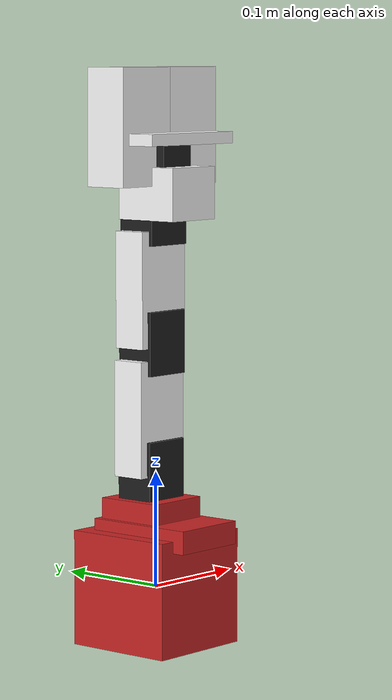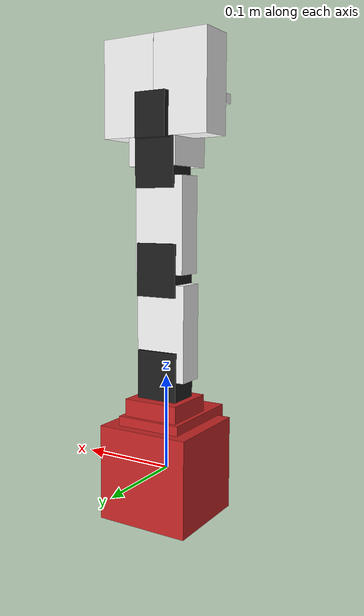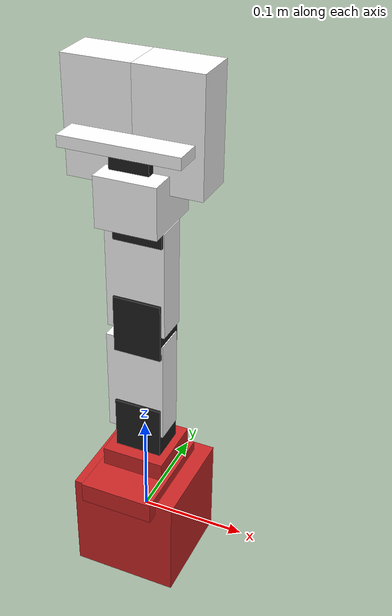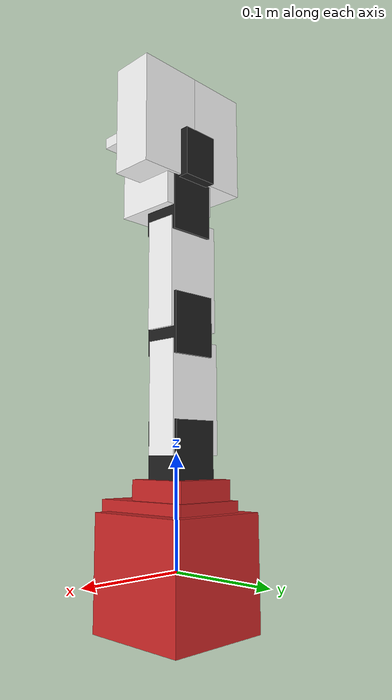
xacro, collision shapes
<?xml version="1.0"?>

<robot name="arm" xmlns:xacro="http://www.ros.org/wiki/xacro"> <!-- Added xmlsn:xacro-->

  <!--Inclusions-->
  <xacro:include filename="$(find arm_description)/urdf/arm.gazebo.xacro" />
  <xacro:include filename="$(find arm_description)/urdf/arm.transmission.xacro" />
  <xacro:include filename="$(find arm_description)/urdf/camera.xacro" />

  <link name="base_link">
    <visual>
      <geometry>
        <mesh filename="package://arm_description/meshes/base_link.stl" scale="0.001 0.001 0.001"/>
      </geometry>
      <origin rpy="0 0 0" xyz="0 0 0"/>
    </visual>
    <collision>
      <geometry>
        <box size="0.1 0.1 0.1"/>
      </geometry>
      <origin rpy="0 0 0" xyz="0 0 0"/>
    </collision>
    <inertial>
      <mass value="0.1"/>
      <inertia ixx="1.06682889e+08" ixy="0.0" ixz="0.0" iyy="9.92165844e+07" iyz="0.0" izz="1.26939175e+08"/>
    </inertial>
  </link>

  <joint name="base_1_2" type="fixed">
    <parent link="base_link"/>
    <child link="base_turn"/>
    <origin xyz="-0.0011 -0.011 0.05"/>
  </joint>

  <link name="base_turn">
    <visual>
      <geometry>
        <mesh filename="package://arm_description/meshes/base_turn.stl" scale="0.001 0.001 0.001"/>
      </geometry>
      <origin rpy="0 0 0" xyz="0 0 0"/>
    </visual>
    <collision>
      <geometry>
          <box size="0.07 0.1 0.02"/>
      </geometry>
      <origin rpy="0 0 0" xyz="0 0 0"/>
    </collision>
    <inertial>
      <mass value="0.1"/>
      <inertia ixx="1.35223008e+07" ixy="0.0" ixz="0.0" iyy="8.13814925e+06" iyz="0.0" izz="2.14903814e+07"/>
    </inertial>
  </link>

  <joint name="j0" type="revolute">
    <parent link="base_turn"/>
    <child link="base_turn_rot"/>
    <origin xyz="-0.0 0.0155 0.013" rpy = "0 0 -1.57"/>
    <axis xyz="0 0 1" />
    <limit effort="300" velocity="0.1" lower="-2.57" upper="2.57"/>
  </joint>

  <link name="base_turn_rot">
    <visual>
      <geometry>
        <mesh filename="package://arm_description/meshes/base_turn_table_rot.stl" scale="0.001 0.001 0.001"/>
      </geometry>

    </visual>
    <collision>
      <geometry>
        <box size="0.06 0.06 0.03"/>
      </geometry>
      <origin rpy="0 0 0" xyz="0 0 0"/>
    </collision>

    <inertial>
      <mass value="0.1"/>
      <inertia ixx="3.41992001e+06" ixy="0.0" ixz="0.0" iyy="2.85587836e+06" iyz="0.0" izz="5.84313870e+06"/>
    </inertial>
  </link>

  <joint name="base_turn_rot_dyn2" type="fixed">
    <parent link="base_turn_rot"/>
    <child link="dyn2"/>
    <origin xyz="0 0 0.0385" rpy="0 1.57 1.57 "/>
  </joint>

  <link name="dyn2">
    <visual>
      <geometry>
        <mesh filename="package://arm_description/meshes/dyn.stl" scale="0.01 0.01 0.01"/>
      </geometry>

      <origin rpy="0 0 0" xyz="0 0 0"/>
    </visual>
    <collision>
      <geometry>
         <box size="0.055 0.035 0.045"/>
      </geometry>
      <origin rpy="0 0 0" xyz="0 0 0"/>
    </collision>
     <inertial>
      <mass value="0.1"/>
      <inertia ixx="6.90013881e+01" ixy="0.0" ixz="0.0" iyy="1.24554875e+02" iyz="0.0" izz="1.04295793e+02"/>
    </inertial>
  </link>

  <joint name="j1" type="revolute">
    <parent link="dyn2"/>
    <child link="dyn2_r"/>
    <origin xyz="0 0 0.0" rpy="0 0 0"/>
    <axis xyz="0 0 1" />
    <limit effort="300" velocity="0.1" lower="-3.14" upper="3.14"/>
  </joint>

  <link name="dyn2_r">

  </link>

  <joint name="dyn2_f4" type="fixed">
    <parent link="dyn2_r"/>
    <child link="f4"/>
    <origin xyz="-0.047 0.0 -0.003" rpy="0 1.57 1.57"/>
  </joint>

  <link name="f4">
    <visual>
      <geometry>
        <mesh filename="package://arm_description/meshes/f4_n_f3.stl" scale="0.001 0.001 0.001"/>
      </geometry>
      <origin rpy="0 0 0" xyz="0 0 0"/>
      <material name="white">
        <color rgba="1 1 1 1"/>
      </material>
    </visual>
    <collision>
      <geometry>
         <box size="0.055 0.1 0.03"/>
      </geometry>
      <origin rpy="0 0 0" xyz="0 0 0"/>
    </collision>
     <inertial>
      <mass value="0.1"/>
      <inertia ixx="6.90013881e+01" ixy="0.0" ixz="0.0" iyy="1.24554875e+02" iyz="0.0" izz="1.04295793e+02"/>
    </inertial>
  </link>

  <joint name="d4_dyn3" type="fixed">
    <parent link="f4"/>
    <child link="dyn3"/>
    <origin xyz="-0.004 0.0645 0 " rpy="-1.57 3.14 1.57"/>
  </joint>

  <link name="dyn3">
    <visual>
      <geometry>
        <mesh filename="package://arm_description/meshes/dyn.stl" scale="0.01 0.01 0.01"/>
      </geometry>
      <origin rpy="0 0 0" xyz="0 0 0"/>
    </visual>
    <collision>
      <geometry>
         <box size="0.055 0.035 0.045"/>
      </geometry>
      <origin rpy="0 0 0" xyz="0 0 0"/>
    </collision>
     <inertial>
      <mass value="0.1"/>
      <inertia ixx="6.90013881e+01" ixy="0.0" ixz="0.0" iyy="1.24554875e+02" iyz="0.0" izz="1.04295793e+02"/>
    </inertial>
  </link>

  <joint name="j2" type="revolute">
    <parent link="dyn3"/>
    <child link="dyn3_r"/>
    <origin xyz="0 0 0.0" rpy="0 0 0"/>
    <axis xyz="0 0 1" />
    <limit effort="300" velocity="0.1" lower="-3.14" upper="3.14"/>
  </joint>

  <link name="dyn3_r">

  </link>

  <joint name="dyn3_f5" type="fixed">
    <parent link="dyn3_r"/>
    <child link="f5"/>
    <origin xyz="-0.046 -0.0 -0.002" rpy="1.57 1.57 3.1415 "/>
  </joint>

  <link name="f5">
    <visual>
      <geometry>
        <mesh filename="package://arm_description/meshes/f4_n_f3.stl" scale="0.001 0.001 0.001"/>
      </geometry>
      <origin rpy="0 0 0" xyz="0 0 0"/>
      <material name="white">
        <color rgba="1 1 1 1"/>
      </material>
    </visual>
    <collision>
      <geometry>
         <box size="0.055 0.1 0.03"/>
      </geometry>
      <origin rpy="0 0 0" xyz="0 0 0"/>
    </collision>

    <inertial>
      <mass value="0.1"/>
      <inertia ixx="1.13130695e+07" ixy="0.0" ixz="0.0" iyy="8.78052401e+06" iyz="0.0" izz="1.72940286e+07"/>
    </inertial>
  </link>

  <joint name="f5_dyn4" type="fixed">
    <parent link="f5"/>
    <child link="dyn4"/>
    <origin xyz="-0.004 0.065 -0.0" rpy="-1.57 3.1415 1.57 "/>
  </joint>

  <link name="dyn4">
    <visual>
      <geometry>
        <mesh filename="package://arm_description/meshes/dyn.stl" scale="0.01 0.01 0.01"/>
      </geometry>

      <origin rpy="0 0 0" xyz="0 0 0"/>
    </visual>
    <collision>
      <geometry>
        <box size="0.055 0.035 0.045"/>
      </geometry>
      <origin rpy="0 0 0" xyz="0 0 0"/>
    </collision>

    <inertial>
      <mass value="0.1"/>
      <inertia ixx="6.90013881e+01" ixy="0.0" ixz="0.0" iyy="1.24554875e+02" iyz="0.0" izz="1.04295793e+02"/>
    </inertial>
  </link>

  <joint name="j3" type="revolute">
    <parent link="dyn4"/>
    <child link="dyn4_r"/>
    <origin xyz="0 0 0.0" rpy="0 0 0"/>
    <axis xyz="0 0 1" />
    <limit effort="300" velocity="0.1" lower="-3.14" upper="3.14"/>
  </joint>

  <link name="dyn4_r">

  </link>

  <joint name="f5_wrist" type="fixed">
    <parent link="dyn4_r"/>
    <child link="wrist"/>
    <origin xyz="-0.017 -0.013 0.003" rpy="1.57 1.57 -1.57"/>
  </joint>

  <link name="wrist">
    <visual>
      <geometry>
        <mesh filename="package://arm_description/meshes/wrist.stl" scale="0.001 0.001 0.001"/>
      </geometry>
      <origin rpy="0 0 0" xyz="0 0 0"/>
      <material name="white">
        <color rgba="1 1 1 1"/>
      </material>
    </visual>
    <collision>
      <geometry>
        <box size="0.055 0.06 0.045"/>
      </geometry>
      <origin rpy="0 0 0" xyz="0 0 0"/>
    </collision>

     <inertial>
      <mass value="0.1"/>
      <inertia ixx="6.90013881e+01" ixy="0.0" ixz="0.0" iyy="1.24554875e+02" iyz="0.0" izz="1.04295793e+02"/>
    </inertial>
  </link>

  <joint name="wrist_dyn5" type="fixed">
    <parent link="wrist"/>
    <child link="dyn5"/>
    <origin xyz="0.0038 -0.013 0.0275" rpy="0 0 1.57"/>
  </joint>

    <link name="dyn5">
    <visual>
      <geometry>
        <mesh filename="package://arm_description/meshes/dyn.stl" scale="0.01 0.01 0.01"/>
      </geometry>
      <origin rpy="0 0 0" xyz="0 0 0"/>
    </visual>
    <collision>
      <geometry>
        <box size="0.055 0.035 0.045"/>
      </geometry>
      <origin rpy="0 0 0" xyz="0 0 0"/>
    </collision>

    <inertial>
      <mass value="0.1"/>
      <inertia ixx="6.90013881e+01" ixy="0.0" ixz="0.0" iyy="1.24554875e+02" iyz="0.0" izz="1.04295793e+02"/>
    </inertial>
  </link>

  <joint name="dyn5_dyn5_r" type="fixed">
    <parent link="dyn5"/>
    <child link="dyn5_r"/>
    <origin xyz="0 0 0.0" rpy="0 0 0"/>
    <axis xyz="0 0 1" />
    <limit effort="300" velocity="0.1" lower="-3.14" upper="3.14"/>
  </joint>

  <link name="dyn5_r">

  </link>

  <joint name="wrist_rotate_dyn5" type="fixed">
    <parent link="dyn5_r"/>
    <child link="crawer_base"/>
    <origin xyz="0.015 0 0.019" rpy="0 0 1.57"/>
  </joint>

  <link name="crawer_base">
    <visual>
      <geometry>
        <mesh filename="package://arm_description/meshes/the_crawer_base.stl" scale="0.001 0.001 0.001"/>
      </geometry>
      <origin rpy="0 0 0" xyz="0 0 0"/>
      <material name="white">
        <color rgba="1 1 1 1"/>
      </material>
    </visual>
    <collision>
      <geometry>
        <box size="0.105 0.06 0.01"/>
      </geometry>
      <origin rpy="0 0 0" xyz="0 0 0"/>
    </collision>

    <inertial>
      <mass value="0.1"/>
      <inertia ixx="6.90013881e+01" ixy="0.0" ixz="0.0" iyy="1.24554875e+02" iyz="0.0" izz="1.04295793e+02"/>
    </inertial>
  </link>

  <joint name="crawer_base_crawer_left" type="fixed">
    <parent link="crawer_base"/>
    <child link="crawer_left"/>
    <origin xyz="-0.03 0.015 0.01" rpy="0 -1.57 0"/>
  </joint>

  <link name="crawer_left">
    <visual>
      <geometry>
        <mesh filename="package://arm_description/meshes/the_crawer.stl" scale="0.001 0.001 0.001"/>
      </geometry>
      <origin rpy="0 0 0" xyz="0 0 0"/>
      <material name="white">
        <color rgba="1 1 1 1"/>
      </material>
    </visual>
    <collision>
      <geometry>
        <box size="0.1 0.04 0.06"/>
      </geometry>
      <origin rpy="0 0 0" xyz="0 0 0"/>
    </collision>

    <inertial>
      <mass value="0.1"/>
      <inertia ixx="6.90013881e+01" ixy="0.0" ixz="0.0" iyy="1.24554875e+02" iyz="0.0" izz="1.04295793e+02"/>
    </inertial>
  </link>

  <joint name="crawer_base_crawer_right" type="fixed">
    <parent link="crawer_base"/>
    <child link="crawer_right"/>
    <origin xyz="0.03 0.015 0.01" rpy="3.1415 -1.57 0"/>
  </joint>

  <link name="crawer_right">
    <visual>
      <geometry>
        <mesh filename="package://arm_description/meshes/the_crawer.stl" scale="0.001 0.001 0.001"/>
      </geometry>
      <origin rpy="0 0 0" xyz="0 0 0"/>
      <material name="white">
        <color rgba="1 1 1 1"/>
      </material>
    </visual>
    <collision>
      <geometry>
        <box size="0.1 0.04 0.06"/>
      </geometry>
      <origin rpy="0 0 0" xyz="0 0 0"/>
    </collision>

    <inertial>
      <mass value="0.1"/>
      <inertia ixx="6.90013881e+01" ixy="0.0" ixz="0.0" iyy="1.24554875e+02" iyz="0.0" izz="1.04295793e+02"/>
    </inertial>
  </link>

  <!-- I've moved the gazebo tags to arm.gazebo.xacro -->

  <xacro:arm_gazebo/>

  <xacro:transmission_block joint_name="j0"/>
  <xacro:transmission_block joint_name="j1"/>
  <xacro:transmission_block joint_name="j2"/>
  <xacro:transmission_block joint_name="j3"/>

  <xacro:camera_sensor/>

</robot>

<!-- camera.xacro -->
<robot xmlns:xacro="http://www.ros.org/wiki/xacro" name="camera">

    <!-- similar to https://github.com/CentroEPiaggio/irobotcreate2ros/blob/master/model/camera.urdf.xacro -->

    <xacro:macro name="camera_sensor">

        <joint name="camera_joint" type="fixed">
            <axis xyz="0 1 0" />
            <origin xyz="0 0 0" rpy="0 0 0"/>
            <parent link="base_link"/>
            <child link="camera_link"/>
        </joint>

        <link name="camera_link">
            <collision>
                <origin xyz="0 0 0" rpy="0 0 0"/>
                <geometry>
                    <box size="0.02 0.08 0.05"/>
                </geometry>
            </collision>
            <visual>
                <origin xyz="0 0 0" rpy="0 0 0"/>
                <geometry>
                    <box size="0.02 0.08 0.05"/>
                </geometry>
            </visual>
            <inertial>
                <mass value="0.0001" />
                <origin xyz="0 0 0" rpy="0 0 ${pi}"/>
                <inertia ixx="0.0000001" ixy="0" ixz="0" iyy="0.0000001" iyz="0" izz="0.0000001" />
            </inertial>
        </link>

    </xacro:macro>

</robot>
